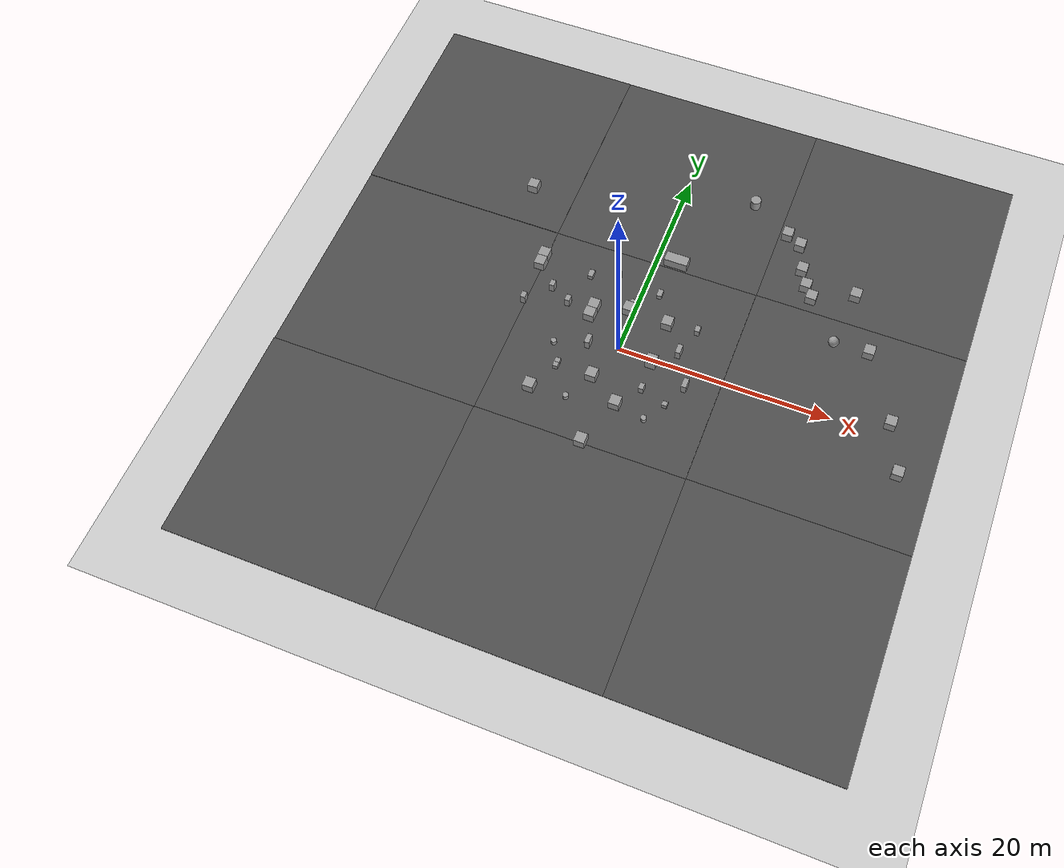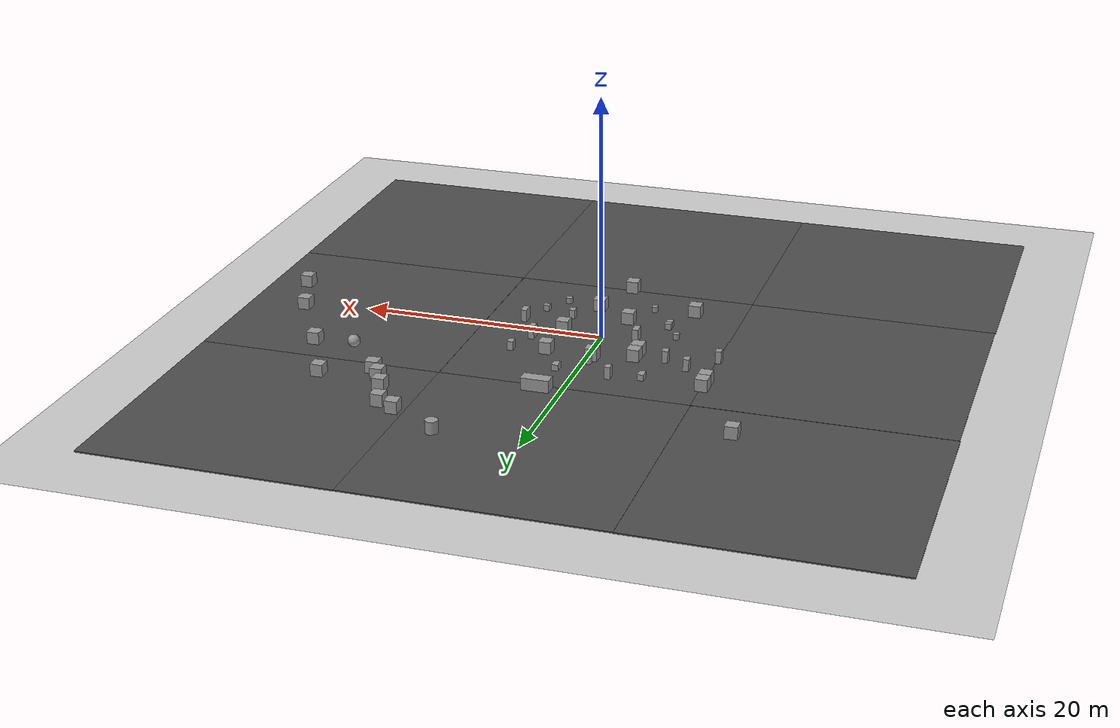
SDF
<sdf version="1.7">
 <world name="default">
  <scene><ambient>0.4 0.4 0.4 1</ambient><background>0.7 0.7 0.7 1</background><shadows>1</shadows></scene>
  <light name="sun" type="directional">
   <pose>0 0 10 0 -0 0</pose>
   <diffuse>0.8 0.8 0.8 1</diffuse>
   <specular>0.2 0.2 0.2 1</specular>
   <attenuation>
    <range>1000</range>
    <constant>0.9</constant>
    <linear>0.01</linear>
    <quadratic>0.001</quadratic>
   </attenuation>
   <direction>-0.5 0.1 -0.9</direction>
   <spot><inner_angle>0</inner_angle><outer_angle>0</outer_angle><falloff>0</falloff></spot>
  </light>
  <model name="ground_plane">
   <static>1</static>
   <link name="link">
    <collision name="collision">
     <geometry><plane><normal>0 0 1</normal><size>100 100</size></plane></geometry>
     <surface>
      <contact><collide_bitmask>65535</collide_bitmask></contact>
      <friction><ode><mu>100</mu><mu2>50</mu2></ode></friction>
     </surface>
    </collision>
    <visual name="visual">
     <cast_shadows>0</cast_shadows>
     <geometry><plane><normal>0 0 1</normal><size>100 100</size></plane></geometry>
     <material>
      <script><uri>file://media/materials/scripts/gazebo.material</uri><name>Gazebo/Grey</name></script>
     </material>
    </visual>
   </link>
  </model>
  <physics type="ode">
   <real_time_update_rate>3000</real_time_update_rate>
   <max_step_size>0.001</max_step_size>
   <real_time_factor>10</real_time_factor>
   <ode>
    <solver>
     <type>quick</type>
     <iters>100</iters>
     <precon_iters>0</precon_iters>
     <sor>1.4</sor>
     <use_dynamic_moi_rescaling>1</use_dynamic_moi_rescaling>
    </solver>
    <constraints>
     <cfm>1e-05</cfm>
     <erp>0.2</erp>
     <contact_max_correcting_vel>2000</contact_max_correcting_vel>
     <contact_surface_layer>0.01</contact_surface_layer>
    </constraints>
   </ode>
  </physics>
  <gravity>0 0 -9.8</gravity>
  <magnetic_field>6e-06 2.3e-05 -4.2e-05</magnetic_field>
  <atmosphere type="adiabatic"/>
  <spherical_coordinates>
   <surface_model>EARTH_WGS84</surface_model>
   <latitude_deg>0</latitude_deg>
   <longitude_deg>0</longitude_deg>
   <elevation>0</elevation>
   <heading_deg>0</heading_deg>
  </spherical_coordinates>
  <model name="asphalt_plane">
   <static>1</static>
   <link name="link">
    <collision name="collision"><geometry><box><size>20 20 0.1</size></box></geometry></collision>
    <visual name="visual">
     <cast_shadows>0</cast_shadows>
     <geometry><box><size>20 20 0.1</size></box></geometry>
     <material>
      <script>
       <uri>model://asphalt_plane/materials/scripts</uri>
       <uri>model://asphalt_plane/materials/textures</uri>
       <name>vrc/asphalt</name>
      </script>
     </material>
    </visual>
   </link>
   <pose>-0.014859 -0.026662 0 0 -0 0</pose>
  </model>
  <model name="asphalt_plane_clone">
   <static>1</static>
   <link name="link">
    <collision name="collision"><geometry><box><size>20 20 0.1</size></box></geometry></collision>
    <visual name="visual">
     <cast_shadows>0</cast_shadows>
     <geometry><box><size>20 20 0.1</size></box></geometry>
     <material>
      <script>
       <uri>model://asphalt_plane/materials/scripts</uri>
       <uri>model://asphalt_plane/materials/textures</uri>
       <name>vrc/asphalt</name>
      </script>
     </material>
    </visual>
   </link>
   <pose>20 0 0 0 -0 0</pose>
  </model>
  <model name="asphalt_plane_clone_0">
   <static>1</static>
   <link name="link">
    <collision name="collision"><geometry><box><size>20 20 0.1</size></box></geometry></collision>
    <visual name="visual">
     <cast_shadows>0</cast_shadows>
     <geometry><box><size>20 20 0.1</size></box></geometry>
     <material>
      <script>
       <uri>model://asphalt_plane/materials/scripts</uri>
       <uri>model://asphalt_plane/materials/textures</uri>
       <name>vrc/asphalt</name>
      </script>
     </material>
    </visual>
   </link>
   <pose>20 -20 0 0 -0 0</pose>
  </model>
  <model name="asphalt_plane_clone_1">
   <static>1</static>
   <link name="link">
    <collision name="collision"><geometry><box><size>20 20 0.1</size></box></geometry></collision>
    <visual name="visual">
     <cast_shadows>0</cast_shadows>
     <geometry><box><size>20 20 0.1</size></box></geometry>
     <material>
      <script>
       <uri>model://asphalt_plane/materials/scripts</uri>
       <uri>model://asphalt_plane/materials/textures</uri>
       <name>vrc/asphalt</name>
      </script>
     </material>
    </visual>
   </link>
   <pose>0 -20 0 0 -0 0</pose>
  </model>
  <model name="asphalt_plane_clone_2">
   <static>1</static>
   <link name="link">
    <collision name="collision"><geometry><box><size>20 20 0.1</size></box></geometry></collision>
    <visual name="visual">
     <cast_shadows>0</cast_shadows>
     <geometry><box><size>20 20 0.1</size></box></geometry>
     <material>
      <script>
       <uri>model://asphalt_plane/materials/scripts</uri>
       <uri>model://asphalt_plane/materials/textures</uri>
       <name>vrc/asphalt</name>
      </script>
     </material>
    </visual>
   </link>
   <pose>-20 -20 0 0 -0 0</pose>
  </model>
  <model name="asphalt_plane_clone_3">
   <static>1</static>
   <link name="link">
    <collision name="collision"><geometry><box><size>20 20 0.1</size></box></geometry></collision>
    <visual name="visual">
     <cast_shadows>0</cast_shadows>
     <geometry><box><size>20 20 0.1</size></box></geometry>
     <material>
      <script>
       <uri>model://asphalt_plane/materials/scripts</uri>
       <uri>model://asphalt_plane/materials/textures</uri>
       <name>vrc/asphalt</name>
      </script>
     </material>
    </visual>
   </link>
   <pose>-19.9436 -0.028987 0 0 -0 0</pose>
  </model>
  <model name="asphalt_plane_clone_4">
   <static>1</static>
   <link name="link">
    <collision name="collision"><geometry><box><size>20 20 0.1</size></box></geometry></collision>
    <visual name="visual">
     <cast_shadows>0</cast_shadows>
     <geometry><box><size>20 20 0.1</size></box></geometry>
     <material>
      <script>
       <uri>model://asphalt_plane/materials/scripts</uri>
       <uri>model://asphalt_plane/materials/textures</uri>
       <name>vrc/asphalt</name>
      </script>
     </material>
    </visual>
   </link>
   <pose>-20 20 0 0 -0 0</pose>
  </model>
  <model name="asphalt_plane_clone_5">
   <static>1</static>
   <link name="link">
    <collision name="collision"><geometry><box><size>20 20 0.1</size></box></geometry></collision>
    <visual name="visual">
     <cast_shadows>0</cast_shadows>
     <geometry><box><size>20 20 0.1</size></box></geometry>
     <material>
      <script>
       <uri>model://asphalt_plane/materials/scripts</uri>
       <uri>model://asphalt_plane/materials/textures</uri>
       <name>vrc/asphalt</name>
      </script>
     </material>
    </visual>
   </link>
   <pose>0.007354 19.9731 0 0 -0 0</pose>
  </model>
  <model name="asphalt_plane_clone_6">
   <static>1</static>
   <link name="link">
    <collision name="collision"><geometry><box><size>20 20 0.1</size></box></geometry></collision>
    <visual name="visual">
     <cast_shadows>0</cast_shadows>
     <geometry><box><size>20 20 0.1</size></box></geometry>
     <material>
      <script>
       <uri>model://asphalt_plane/materials/scripts</uri>
       <uri>model://asphalt_plane/materials/textures</uri>
       <name>vrc/asphalt</name>
      </script>
     </material>
    </visual>
   </link>
   <pose>20 20 0 0 -0 0</pose>
  </model>
  <light name="user_directional_light_0" type="directional">
   <pose>0 0 1 0 -0 0</pose>
   <diffuse>0.5 0.5 0.5 1</diffuse>
   <specular>0.1 0.1 0.1 1</specular>
   <direction>0.1 0.1 -0.9</direction>
   <attenuation>
    <range>20</range>
    <constant>0.5</constant>
    <linear>0.01</linear>
    <quadratic>0.001</quadratic>
   </attenuation>
   <spot><inner_angle>0</inner_angle><outer_angle>0</outer_angle><falloff>0</falloff></spot>
  </light>
  <model name="unit_box">
   <pose>3.3249 3.92526 0.55 0 -0 -1e-06</pose>
   <link name="link">
    <inertial>
     <mass>1</mass>
     <inertia>
      <ixx>0.166667</ixx>
      <ixy>0</ixy>
      <ixz>0</ixz>
      <iyy>0.166667</iyy>
      <iyz>0</iyz>
      <izz>0.166667</izz>
     </inertia>
    </inertial>
    <collision name="collision"><geometry><box><size>1 1 1</size></box></geometry></collision>
    <visual name="visual">
     <geometry><box><size>1 1 1</size></box></geometry>
     <material>
      <script><name>Gazebo/Grey</name><uri>file://media/materials/scripts/gazebo.material</uri></script>
     </material>
    </visual>
   </link>
  </model>
  <model name="unit_cylinder_clone_3">
   <pose>-0.494177 5.00003 0.294835 0 -0 0.002481</pose>
   <link name="link">
    <inertial>
     <mass>1</mass>
     <inertia><ixx>0.145833</ixx><ixy>0</ixy><ixz>0</ixz><iyy>0.145833</iyy><iyz>0</iyz><izz>0.125</izz></inertia>
    </inertial>
    <collision name="collision">
     <geometry><cylinder><radius>0.264047</radius><length>0.48967</length></cylinder></geometry>
    </collision>
    <visual name="visual">
     <geometry><cylinder><radius>0.264047</radius><length>0.48967</length></cylinder></geometry>
     <material>
      <script><name>Gazebo/Grey</name><uri>file://media/materials/scripts/gazebo.material</uri></script>
     </material>
    </visual>
   </link>
  </model>
  <model name="unit_box_0_clone_1_clone_2">
   <pose>5.89538 -3.99875 0.301356 0 -0 1e-06</pose>
   <link name="link">
    <inertial>
     <mass>1</mass>
     <inertia>
      <ixx>0.166667</ixx>
      <ixy>0</ixy>
      <ixz>0</ixz>
      <iyy>0.166667</iyy>
      <iyz>0</iyz>
      <izz>0.166667</izz>
     </inertia>
    </inertial>
    <collision name="collision">
     <geometry><box><size>0.495294 0.467832 0.502712</size></box></geometry>
    </collision>
    <visual name="visual">
     <geometry><box><size>0.495294 0.467832 0.502712</size></box></geometry>
     <material>
      <script><name>Gazebo/Grey</name><uri>file://media/materials/scripts/gazebo.material</uri></script>
     </material>
    </visual>
   </link>
  </model>
  <model name="unit_box_1">
   <pose>1.73473 -5.44844 0.55 0 -0 -1e-06</pose>
   <link name="link">
    <inertial>
     <mass>1</mass>
     <inertia>
      <ixx>0.166667</ixx>
      <ixy>0</ixy>
      <ixz>0</ixz>
      <iyy>0.166667</iyy>
      <iyz>0</iyz>
      <izz>0.166667</izz>
     </inertia>
    </inertial>
    <collision name="collision"><geometry><box><size>1 1 1</size></box></geometry></collision>
    <visual name="visual">
     <geometry><box><size>1 1 1</size></box></geometry>
     <material>
      <script><name>Gazebo/Grey</name><uri>file://media/materials/scripts/gazebo.material</uri></script>
     </material>
    </visual>
   </link>
  </model>
  <model name="unit_box_2">
   <pose>-1.24056 -3.52811 0.55 0 -0 -1e-06</pose>
   <link name="link">
    <inertial>
     <mass>1</mass>
     <inertia>
      <ixx>0.166667</ixx>
      <ixy>0</ixy>
      <ixz>0</ixz>
      <iyy>0.166667</iyy>
      <iyz>0</iyz>
      <izz>0.166667</izz>
     </inertia>
    </inertial>
    <collision name="collision"><geometry><box><size>1 1 1</size></box></geometry></collision>
    <visual name="visual">
     <geometry><box><size>1 1 1</size></box></geometry>
     <material>
      <script><name>Gazebo/Grey</name><uri>file://media/materials/scripts/gazebo.material</uri></script>
     </material>
    </visual>
   </link>
  </model>
  <model name="unit_box_3_clone_1">
   <pose>6.15547 4.18849 0.422713 0 -0 0</pose>
   <link name="link">
    <inertial>
     <mass>1</mass>
     <inertia>
      <ixx>0.166667</ixx>
      <ixy>0</ixy>
      <ixz>0</ixz>
      <iyy>0.166667</iyy>
      <iyz>0</iyz>
      <izz>0.166667</izz>
     </inertia>
    </inertial>
    <collision name="collision">
     <geometry><box><size>0.473217 0.637104 0.745427</size></box></geometry>
    </collision>
    <visual name="visual">
     <geometry><box><size>0.473217 0.637104 0.745427</size></box></geometry>
     <material>
      <script><name>Gazebo/Grey</name><uri>file://media/materials/scripts/gazebo.material</uri></script>
     </material>
    </visual>
   </link>
  </model>
  <model name="unit_box_3_clone_2">
   <pose>-6.12917 2.98269 0.55 0 -0 0</pose>
   <link name="link">
    <inertial>
     <mass>1</mass>
     <inertia>
      <ixx>0.166667</ixx>
      <ixy>0</ixy>
      <ixz>0</ixz>
      <iyy>0.166667</iyy>
      <iyz>0</iyz>
      <izz>0.166667</izz>
     </inertia>
    </inertial>
    <collision name="collision"><geometry><box><size>0.473217 0.637104 1</size></box></geometry></collision>
    <visual name="visual">
     <geometry><box><size>0.473217 0.637104 1</size></box></geometry>
     <material>
      <script><name>Gazebo/Grey</name><uri>file://media/materials/scripts/gazebo.material</uri></script>
     </material>
    </visual>
   </link>
  </model>
  <model name="unit_box_5">
   <pose>1.87337 10.6312 0.549967 0 -2.9e-05 0</pose>
   <link name="link">
    <inertial>
     <mass>1</mass>
     <inertia>
      <ixx>0.166667</ixx>
      <ixy>0</ixy>
      <ixz>0</ixz>
      <iyy>0.166667</iyy>
      <iyz>0</iyz>
      <izz>0.166667</izz>
     </inertia>
    </inertial>
    <collision name="collision"><geometry><box><size>2.25366 1 1</size></box></geometry></collision>
    <visual name="visual">
     <geometry><box><size>2.25366 1 1</size></box></geometry>
     <material>
      <script><name>Gazebo/Grey</name><uri>file://media/materials/scripts/gazebo.material</uri></script>
     </material>
    </visual>
   </link>
  </model>
  <model name="unit_cylinder_1">
   <pose>6.78695 19.7557 0.550006 -1.1e-05 -4e-06 -0.001505</pose>
   <link name="link">
    <inertial>
     <mass>1</mass>
     <inertia><ixx>0.145833</ixx><ixy>0</ixy><ixz>0</ixz><iyy>0.145833</iyy><iyz>0</iyz><izz>0.125</izz></inertia>
    </inertial>
    <collision name="collision">
     <geometry><cylinder><radius>0.5</radius><length>1</length></cylinder></geometry>
    </collision>
    <visual name="visual">
     <geometry><cylinder><radius>0.5</radius><length>1</length></cylinder></geometry>
     <material>
      <script><name>Gazebo/Grey</name><uri>file://media/materials/scripts/gazebo.material</uri></script>
     </material>
    </visual>
   </link>
  </model>
  <model name="unit_sphere_0">
   <pose>18.1703 7.41217 0.55 0 -0 0</pose>
   <link name="link">
    <inertial>
     <mass>1</mass>
     <inertia><ixx>0.1</ixx><ixy>0</ixy><ixz>0</ixz><iyy>0.1</iyy><iyz>0</iyz><izz>0.1</izz></inertia>
    </inertial>
    <collision name="collision"><geometry><sphere><radius>0.5</radius></sphere></geometry></collision>
    <visual name="visual">
     <geometry><sphere><radius>0.5</radius></sphere></geometry>
     <material>
      <script><name>Gazebo/Grey</name><uri>file://media/materials/scripts/gazebo.material</uri></script>
     </material>
    </visual>
   </link>
  </model>
  <model name="unit_box_6">
   <pose>25.1293 1.2362 0.55 0 -0 -3e-06</pose>
   <link name="link">
    <inertial>
     <mass>1</mass>
     <inertia>
      <ixx>0.166667</ixx>
      <ixy>0</ixy>
      <ixz>0</ixz>
      <iyy>0.166667</iyy>
      <iyz>0</iyz>
      <izz>0.166667</izz>
     </inertia>
    </inertial>
    <collision name="collision"><geometry><box><size>1 1 1</size></box></geometry></collision>
    <visual name="visual">
     <geometry><box><size>1 1 1</size></box></geometry>
     <material>
      <script><name>Gazebo/Grey</name><uri>file://media/materials/scripts/gazebo.material</uri></script>
     </material>
    </visual>
   </link>
  </model>
  <model name="unit_box_4_clone_clone">
   <pose>13.2189 13.9745 0.55 0 -0 -3e-06</pose>
   <link name="link">
    <inertial>
     <mass>1</mass>
     <inertia>
      <ixx>0.166667</ixx>
      <ixy>0</ixy>
      <ixz>0</ixz>
      <iyy>0.166667</iyy>
      <iyz>0</iyz>
      <izz>0.166667</izz>
     </inertia>
    </inertial>
    <collision name="collision"><geometry><box><size>1 1 1</size></box></geometry></collision>
    <visual name="visual">
     <geometry><box><size>1 1 1</size></box></geometry>
     <material>
      <script><name>Gazebo/Grey</name><uri>file://media/materials/scripts/gazebo.material</uri></script>
     </material>
    </visual>
   </link>
  </model>
  <model name="unit_box_4_clone_clone_0">
   <pose>10.7891 17.3515 0.55 0 -0 -3e-06</pose>
   <link name="link">
    <inertial>
     <mass>1</mass>
     <inertia>
      <ixx>0.166667</ixx>
      <ixy>0</ixy>
      <ixz>0</ixz>
      <iyy>0.166667</iyy>
      <iyz>0</iyz>
      <izz>0.166667</izz>
     </inertia>
    </inertial>
    <collision name="collision"><geometry><box><size>1 1 1</size></box></geometry></collision>
    <visual name="visual">
     <geometry><box><size>1 1 1</size></box></geometry>
     <material>
      <script><name>Gazebo/Grey</name><uri>file://media/materials/scripts/gazebo.material</uri></script>
     </material>
    </visual>
   </link>
  </model>
  <model name="unit_box_4_clone_clone_1">
   <pose>21.4596 7.50862 0.55 0 -0 -3e-06</pose>
   <link name="link">
    <inertial>
     <mass>1</mass>
     <inertia>
      <ixx>0.166667</ixx>
      <ixy>0</ixy>
      <ixz>0</ixz>
      <iyy>0.166667</iyy>
      <iyz>0</iyz>
      <izz>0.166667</izz>
     </inertia>
    </inertial>
    <collision name="collision"><geometry><box><size>1 1 1</size></box></geometry></collision>
    <visual name="visual">
     <geometry><box><size>1 1 1</size></box></geometry>
     <material>
      <script><name>Gazebo/Grey</name><uri>file://media/materials/scripts/gazebo.material</uri></script>
     </material>
    </visual>
   </link>
  </model>
  <model name="unit_box_4_clone_clone_2">
   <pose>18.6991 12.9908 0.55 0 -0 -3e-06</pose>
   <link name="link">
    <inertial>
     <mass>1</mass>
     <inertia>
      <ixx>0.166667</ixx>
      <ixy>0</ixy>
      <ixz>0</ixz>
      <iyy>0.166667</iyy>
      <iyz>0</iyz>
      <izz>0.166667</izz>
     </inertia>
    </inertial>
    <collision name="collision"><geometry><box><size>1 1 1</size></box></geometry></collision>
    <visual name="visual">
     <geometry><box><size>1 1 1</size></box></geometry>
     <material>
      <script><name>Gazebo/Grey</name><uri>file://media/materials/scripts/gazebo.material</uri></script>
     </material>
    </visual>
   </link>
  </model>
  <model name="unit_box_4_clone_clone_3">
   <pose>26.913 -3.2566 0.55 0 -0 -3e-06</pose>
   <link name="link">
    <inertial>
     <mass>1</mass>
     <inertia>
      <ixx>0.166667</ixx>
      <ixy>0</ixy>
      <ixz>0</ixz>
      <iyy>0.166667</iyy>
      <iyz>0</iyz>
      <izz>0.166667</izz>
     </inertia>
    </inertial>
    <collision name="collision"><geometry><box><size>1 1 1</size></box></geometry></collision>
    <visual name="visual">
     <geometry><box><size>1 1 1</size></box></geometry>
     <material>
      <script><name>Gazebo/Grey</name><uri>file://media/materials/scripts/gazebo.material</uri></script>
     </material>
    </visual>
   </link>
  </model>
  <model name="unit_box_2_clone">
   <pose>-3.70898 2.31699 0.549998 1e-06 4e-06 -0.007242</pose>
   <link name="link">
    <inertial>
     <mass>1</mass>
     <inertia>
      <ixx>0.166667</ixx>
      <ixy>0</ixy>
      <ixz>0</ixz>
      <iyy>0.166667</iyy>
      <iyz>0</iyz>
      <izz>0.166667</izz>
     </inertia>
    </inertial>
    <collision name="collision"><geometry><box><size>1 1 1</size></box></geometry></collision>
    <visual name="visual">
     <geometry><box><size>1 1 1</size></box></geometry>
     <material>
      <script><name>Gazebo/Grey</name><uri>file://media/materials/scripts/gazebo.material</uri></script>
     </material>
    </visual>
   </link>
  </model>
  <model name="unit_box_0_clone_clone">
   <pose>-5.21709 6.55826 0.301351 -1.2e-05 1e-06 7e-06</pose>
   <link name="link">
    <inertial>
     <mass>1</mass>
     <inertia>
      <ixx>0.166667</ixx>
      <ixy>0</ixy>
      <ixz>0</ixz>
      <iyy>0.166667</iyy>
      <iyz>0</iyz>
      <izz>0.166667</izz>
     </inertia>
    </inertial>
    <collision name="collision">
     <geometry><box><size>0.495294 0.766084 0.502712</size></box></geometry>
    </collision>
    <visual name="visual">
     <geometry><box><size>0.495294 0.766084 0.502712</size></box></geometry>
     <material>
      <script><name>Gazebo/Grey</name><uri>file://media/materials/scripts/gazebo.material</uri></script>
     </material>
    </visual>
   </link>
  </model>
  <model name="unit_box_3_clone_0_clone">
   <pose>5.30107 1.46676 0.55 0 -0 0</pose>
   <link name="link">
    <inertial>
     <mass>1</mass>
     <inertia>
      <ixx>0.166667</ixx>
      <ixy>0</ixy>
      <ixz>0</ixz>
      <iyy>0.166667</iyy>
      <iyz>0</iyz>
      <izz>0.166667</izz>
     </inertia>
    </inertial>
    <collision name="collision"><geometry><box><size>0.473217 0.950732 1</size></box></geometry></collision>
    <visual name="visual">
     <geometry><box><size>0.473217 0.950732 1</size></box></geometry>
     <material>
      <script><name>Gazebo/Grey</name><uri>file://media/materials/scripts/gazebo.material</uri></script>
     </material>
    </visual>
   </link>
  </model>
  <model name="unit_box_2_clone_0">
   <pose>-0.521105 4.14236 0.55 0 -0 -1e-06</pose>
   <link name="link">
    <inertial>
     <mass>1</mass>
     <inertia>
      <ixx>0.166667</ixx>
      <ixy>0</ixy>
      <ixz>0</ixz>
      <iyy>0.166667</iyy>
      <iyz>0</iyz>
      <izz>0.166667</izz>
     </inertia>
    </inertial>
    <collision name="collision"><geometry><box><size>1 1 1</size></box></geometry></collision>
    <visual name="visual">
     <geometry><box><size>1 1 1</size></box></geometry>
     <material>
      <script><name>Gazebo/Grey</name><uri>file://media/materials/scripts/gazebo.material</uri></script>
     </material>
    </visual>
   </link>
  </model>
  <model name="unit_box_3_clone_0_clone_0">
   <pose>-2.77968 -0.427653 0.55 0 -0 0</pose>
   <link name="link">
    <inertial>
     <mass>1</mass>
     <inertia>
      <ixx>0.166667</ixx>
      <ixy>0</ixy>
      <ixz>0</ixz>
      <iyy>0.166667</iyy>
      <iyz>0</iyz>
      <izz>0.166667</izz>
     </inertia>
    </inertial>
    <collision name="collision"><geometry><box><size>0.473217 0.950731 1</size></box></geometry></collision>
    <visual name="visual">
     <geometry><box><size>0.473217 0.950731 1</size></box></geometry>
     <material>
      <script><name>Gazebo/Grey</name><uri>file://media/materials/scripts/gazebo.material</uri></script>
     </material>
    </visual>
   </link>
  </model>
  <model name="unit_box_1_clone_clone">
   <pose>3.30807 -0.378951 0.55 0 -0 -3e-06</pose>
   <link name="link">
    <inertial>
     <mass>1</mass>
     <inertia>
      <ixx>0.166667</ixx>
      <ixy>0</ixy>
      <ixz>0</ixz>
      <iyy>0.166667</iyy>
      <iyz>0</iyz>
      <izz>0.166667</izz>
     </inertia>
    </inertial>
    <collision name="collision"><geometry><box><size>1 1 1</size></box></geometry></collision>
    <visual name="visual">
     <geometry><box><size>1 1 1</size></box></geometry>
     <material>
      <script><name>Gazebo/Grey</name><uri>file://media/materials/scripts/gazebo.material</uri></script>
     </material>
    </visual>
   </link>
  </model>
  <model name="unit_box_3_clone_clone">
   <pose>-2.69557 7.10878 0.55 -0 -0 -0</pose>
   <link name="link">
    <inertial>
     <mass>1</mass>
     <inertia>
      <ixx>0.166667</ixx>
      <ixy>0</ixy>
      <ixz>0</ixz>
      <iyy>0.166667</iyy>
      <iyz>0</iyz>
      <izz>0.166667</izz>
     </inertia>
    </inertial>
    <collision name="collision"><geometry><box><size>0.473217 0.637104 1</size></box></geometry></collision>
    <visual name="visual">
     <geometry><box><size>0.473217 0.637104 1</size></box></geometry>
     <material>
      <script><name>Gazebo/Grey</name><uri>file://media/materials/scripts/gazebo.material</uri></script>
     </material>
    </visual>
   </link>
  </model>
  <model name="unit_box_3_clone_0_clone_clone">
   <pose>6.96449 -1.65259 0.55 0 -0 0</pose>
   <link name="link">
    <inertial>
     <mass>1</mass>
     <inertia>
      <ixx>0.166667</ixx>
      <ixy>0</ixy>
      <ixz>0</ixz>
      <iyy>0.166667</iyy>
      <iyz>0</iyz>
      <izz>0.166667</izz>
     </inertia>
    </inertial>
    <collision name="collision"><geometry><box><size>0.473217 0.950732 1</size></box></geometry></collision>
    <visual name="visual">
     <geometry><box><size>0.473217 0.950732 1</size></box></geometry>
     <material>
      <script><name>Gazebo/Grey</name><uri>file://media/materials/scripts/gazebo.material</uri></script>
     </material>
    </visual>
   </link>
  </model>
  <model name="unit_cylinder_clone_12_clone">
   <pose>-5.78275 -1.44373 0.294836 -4e-06 -3e-06 0.000928</pose>
   <link name="link">
    <inertial>
     <mass>1</mass>
     <inertia><ixx>0.145833</ixx><ixy>0</ixy><ixz>0</ixz><iyy>0.145833</iyy><iyz>0</iyz><izz>0.125</izz></inertia>
    </inertial>
    <collision name="collision">
     <geometry><cylinder><radius>0.264047</radius><length>0.48967</length></cylinder></geometry>
    </collision>
    <visual name="visual">
     <geometry><cylinder><radius>0.264047</radius><length>0.48967</length></cylinder></geometry>
     <material>
      <script><name>Gazebo/Grey</name><uri>file://media/materials/scripts/gazebo.material</uri></script>
     </material>
    </visual>
   </link>
  </model>
  <model name="unit_box_0_clone_1_clone_4_clone">
   <pose>-4.67957 -3.23498 0.301356 0 -0 0.000778</pose>
   <link name="link">
    <inertial>
     <mass>1</mass>
     <inertia>
      <ixx>0.166667</ixx>
      <ixy>0</ixy>
      <ixz>0</ixz>
      <iyy>0.166667</iyy>
      <iyz>0</iyz>
      <izz>0.166667</izz>
     </inertia>
    </inertial>
    <collision name="collision">
     <geometry><box><size>0.495294 0.467832 0.502712</size></box></geometry>
    </collision>
    <visual name="visual">
     <geometry><box><size>0.495294 0.467832 0.502712</size></box></geometry>
     <material>
      <script><name>Gazebo/Grey</name><uri>file://media/materials/scripts/gazebo.material</uri></script>
     </material>
    </visual>
   </link>
  </model>
  <model name="unit_box_0_clone_1_clone_4_clone_0">
   <pose>-4.66868 -3.7028 0.301356 0 -0 0.000778</pose>
   <link name="link">
    <inertial>
     <mass>1</mass>
     <inertia>
      <ixx>0.166667</ixx>
      <ixy>0</ixy>
      <ixz>0</ixz>
      <iyy>0.166667</iyy>
      <iyz>0</iyz>
      <izz>0.166667</izz>
     </inertia>
    </inertial>
    <collision name="collision">
     <geometry><box><size>0.495294 0.467832 0.502712</size></box></geometry>
    </collision>
    <visual name="visual">
     <geometry><box><size>0.495294 0.467832 0.502712</size></box></geometry>
     <material>
      <script><name>Gazebo/Grey</name><uri>file://media/materials/scripts/gazebo.material</uri></script>
     </material>
    </visual>
   </link>
  </model>
  <model name="unit_cylinder_clone_17_clone">
   <pose>-2.67448 -6.27152 0.294825 0 -0 0.000211</pose>
   <link name="link">
    <inertial>
     <mass>1</mass>
     <inertia><ixx>0.145833</ixx><ixy>0</ixy><ixz>0</ixz><iyy>0.145833</iyy><iyz>0</iyz><izz>0.125</izz></inertia>
    </inertial>
    <collision name="collision">
     <geometry><cylinder><radius>0.264047</radius><length>0.48967</length></cylinder></geometry>
    </collision>
    <visual name="visual">
     <geometry><cylinder><radius>0.264047</radius><length>0.48967</length></cylinder></geometry>
     <material>
      <script><name>Gazebo/Grey</name><uri>file://media/materials/scripts/gazebo.material</uri></script>
     </material>
    </visual>
   </link>
  </model>
  <model name="unit_box_3_clone_1_clone">
   <pose>3.41372 -3.20085 0.422713 0 -0 0</pose>
   <link name="link">
    <inertial>
     <mass>1</mass>
     <inertia>
      <ixx>0.166667</ixx>
      <ixy>0</ixy>
      <ixz>0</ixz>
      <iyy>0.166667</iyy>
      <iyz>0</iyz>
      <izz>0.166667</izz>
     </inertia>
    </inertial>
    <collision name="collision">
     <geometry><box><size>0.473217 0.637104 0.745427</size></box></geometry>
    </collision>
    <visual name="visual">
     <geometry><box><size>0.473217 0.637104 0.745427</size></box></geometry>
     <material>
      <script><name>Gazebo/Grey</name><uri>file://media/materials/scripts/gazebo.material</uri></script>
     </material>
    </visual>
   </link>
  </model>
  <model name="unit_cylinder_clone_15_clone">
   <pose>4.61061 -5.98036 0.294834 2e-06 -3e-06 0.002</pose>
   <link name="link">
    <inertial>
     <mass>1</mass>
     <inertia><ixx>0.145833</ixx><ixy>0</ixy><ixz>0</ixz><iyy>0.145833</iyy><iyz>0</iyz><izz>0.125</izz></inertia>
    </inertial>
    <collision name="collision">
     <geometry><cylinder><radius>0.264047</radius><length>0.48967</length></cylinder></geometry>
    </collision>
    <visual name="visual">
     <geometry><cylinder><radius>0.264047</radius><length>0.48967</length></cylinder></geometry>
     <material>
      <script><name>Gazebo/Grey</name><uri>file://media/materials/scripts/gazebo.material</uri></script>
     </material>
    </visual>
   </link>
  </model>
  <model name="unit_box_2_clone_clone">
   <pose>-3.6781 3.3168 0.549998 1e-06 4e-06 -0.007243</pose>
   <link name="link">
    <inertial>
     <mass>1</mass>
     <inertia>
      <ixx>0.166667</ixx>
      <ixy>0</ixy>
      <ixz>0</ixz>
      <iyy>0.166667</iyy>
      <iyz>0</iyz>
      <izz>0.166667</izz>
     </inertia>
    </inertial>
    <collision name="collision"><geometry><box><size>1 1 1</size></box></geometry></collision>
    <visual name="visual">
     <geometry><box><size>1 1 1</size></box></geometry>
     <material>
      <script><name>Gazebo/Grey</name><uri>file://media/materials/scripts/gazebo.material</uri></script>
     </material>
    </visual>
   </link>
  </model>
  <model name="unit_box_3_clone_clone_clone">
   <pose>-8.08164 3.98378 0.55 0 -0 0</pose>
   <link name="link">
    <inertial>
     <mass>1</mass>
     <inertia>
      <ixx>0.166667</ixx>
      <ixy>0</ixy>
      <ixz>0</ixz>
      <iyy>0.166667</iyy>
      <iyz>0</iyz>
      <izz>0.166667</izz>
     </inertia>
    </inertial>
    <collision name="collision"><geometry><box><size>0.473217 0.637104 1</size></box></geometry></collision>
    <visual name="visual">
     <geometry><box><size>0.473217 0.637104 1</size></box></geometry>
     <material>
      <script><name>Gazebo/Grey</name><uri>file://media/materials/scripts/gazebo.material</uri></script>
     </material>
    </visual>
   </link>
  </model>
  <model name="unit_box_0_clone_clone_0">
   <pose>1.58019 6.77243 0.301351 -1.2e-05 1e-06 7e-06</pose>
   <link name="link">
    <inertial>
     <mass>1</mass>
     <inertia>
      <ixx>0.166667</ixx>
      <ixy>0</ixy>
      <ixz>0</ixz>
      <iyy>0.166667</iyy>
      <iyz>0</iyz>
      <izz>0.166667</izz>
     </inertia>
    </inertial>
    <collision name="collision">
     <geometry><box><size>0.495294 0.766084 0.502712</size></box></geometry>
    </collision>
    <visual name="visual">
     <geometry><box><size>0.495294 0.766084 0.502712</size></box></geometry>
     <material>
      <script><name>Gazebo/Grey</name><uri>file://media/materials/scripts/gazebo.material</uri></script>
     </material>
    </visual>
   </link>
  </model>
  <model name="unit_box_2_clone_0_clone_0_clone_clone">
   <pose>-14.1664 14.0915 0.55 0 -0 0.013832</pose>
   <link name="link">
    <inertial>
     <mass>1</mass>
     <inertia>
      <ixx>0.166667</ixx>
      <ixy>0</ixy>
      <ixz>0</ixz>
      <iyy>0.166667</iyy>
      <iyz>0</iyz>
      <izz>0.166667</izz>
     </inertia>
    </inertial>
    <collision name="collision"><geometry><box><size>1 1 1</size></box></geometry></collision>
    <visual name="visual">
     <geometry><box><size>1 1 1</size></box></geometry>
     <material>
      <script><name>Gazebo/Grey</name><uri>file://media/materials/scripts/gazebo.material</uri></script>
     </material>
    </visual>
   </link>
  </model>
  <model name="unit_box_4_clone_clone_2_clone">
   <pose>12.2506 16.5635 0.55 0 0 -3e-06</pose>
   <link name="link">
    <inertial>
     <mass>1</mass>
     <inertia>
      <ixx>0.166667</ixx>
      <ixy>0</ixy>
      <ixz>0</ixz>
      <iyy>0.166667</iyy>
      <iyz>0</iyz>
      <izz>0.166667</izz>
     </inertia>
    </inertial>
    <collision name="collision"><geometry><box><size>1 1 1</size></box></geometry></collision>
    <visual name="visual">
     <geometry><box><size>1 1 1</size></box></geometry>
     <material>
      <script><name>Gazebo/Grey</name><uri>file://media/materials/scripts/gazebo.material</uri></script>
     </material>
    </visual>
   </link>
  </model>
  <model name="unit_box_4_clone_clone_2_clone_0">
   <pose>14.0489 12.3678 0.55 0 0 -3e-06</pose>
   <link name="link">
    <inertial>
     <mass>1</mass>
     <inertia>
      <ixx>0.166667</ixx>
      <ixy>0</ixy>
      <ixz>0</ixz>
      <iyy>0.166667</iyy>
      <iyz>0</iyz>
      <izz>0.166667</izz>
     </inertia>
    </inertial>
    <collision name="collision"><geometry><box><size>1 1 1</size></box></geometry></collision>
    <visual name="visual">
     <geometry><box><size>1 1 1</size></box></geometry>
     <material>
      <script><name>Gazebo/Grey</name><uri>file://media/materials/scripts/gazebo.material</uri></script>
     </material>
    </visual>
   </link>
  </model>
  <model name="unit_box_4_clone_clone_2_clone_1">
   <pose>14.8996 11.288 0.55 0 -0 -3e-06</pose>
   <link name="link">
    <inertial>
     <mass>1</mass>
     <inertia>
      <ixx>0.166667</ixx>
      <ixy>0</ixy>
      <ixz>0</ixz>
      <iyy>0.166667</iyy>
      <iyz>0</iyz>
      <izz>0.166667</izz>
     </inertia>
    </inertial>
    <collision name="collision"><geometry><box><size>1 1 1</size></box></geometry></collision>
    <visual name="visual">
     <geometry><box><size>1 1 1</size></box></geometry>
     <material>
      <script><name>Gazebo/Grey</name><uri>file://media/materials/scripts/gazebo.material</uri></script>
     </material>
    </visual>
   </link>
  </model>
  <model name="unit_box_2_clone_clone_0">
   <pose>-6.07613 -6.47746 0.55 0 -0 -0.007227</pose>
   <link name="link">
    <inertial>
     <mass>1</mass>
     <inertia>
      <ixx>0.166667</ixx>
      <ixy>0</ixy>
      <ixz>0</ixz>
      <iyy>0.166667</iyy>
      <iyz>0</iyz>
      <izz>0.166667</izz>
     </inertia>
    </inertial>
    <collision name="collision"><geometry><box><size>1 1 1</size></box></geometry></collision>
    <visual name="visual">
     <geometry><box><size>1 1 1</size></box></geometry>
     <material>
      <script><name>Gazebo/Grey</name><uri>file://media/materials/scripts/gazebo.material</uri></script>
     </material>
    </visual>
   </link>
  </model>
  <model name="unit_box_2_clone_clone_1">
   <pose>0.222935 -9.9344 0.55 -0 -0 -0.007235</pose>
   <link name="link">
    <inertial>
     <mass>1</mass>
     <inertia>
      <ixx>0.166667</ixx>
      <ixy>0</ixy>
      <ixz>0</ixz>
      <iyy>0.166667</iyy>
      <iyz>0</iyz>
      <izz>0.166667</izz>
     </inertia>
    </inertial>
    <collision name="collision"><geometry><box><size>1 1 1</size></box></geometry></collision>
    <visual name="visual">
     <geometry><box><size>1 1 1</size></box></geometry>
     <material>
      <script><name>Gazebo/Grey</name><uri>file://media/materials/scripts/gazebo.material</uri></script>
     </material>
    </visual>
   </link>
  </model>
  <model name="unit_box_2_clone_0_clone">
   <pose>-10.1221 6.99998 0.549994 -8e-06 1e-06 5e-05</pose>
   <link name="link">
    <inertial>
     <mass>1</mass>
     <inertia>
      <ixx>0.166667</ixx>
      <ixy>0</ixy>
      <ixz>0</ixz>
      <iyy>0.166667</iyy>
      <iyz>0</iyz>
      <izz>0.166667</izz>
     </inertia>
    </inertial>
    <collision name="collision"><geometry><box><size>1 1 1</size></box></geometry></collision>
    <visual name="visual">
     <geometry><box><size>1 1 1</size></box></geometry>
     <material>
      <script><name>Gazebo/Grey</name><uri>file://media/materials/scripts/gazebo.material</uri></script>
     </material>
    </visual>
   </link>
  </model>
  <model name="unit_box_2_clone_0_clone_0">
   <pose>-10.1171 5.99997 0.548672 -0 -9e-06 4.5e-05</pose>
   <link name="link">
    <inertial>
     <mass>1</mass>
     <inertia>
      <ixx>0.166667</ixx>
      <ixy>0</ixy>
      <ixz>0</ixz>
      <iyy>0.166667</iyy>
      <iyz>0</iyz>
      <izz>0.166667</izz>
     </inertia>
    </inertial>
    <collision name="collision"><geometry><box><size>1 1 1</size></box></geometry></collision>
    <visual name="visual">
     <geometry><box><size>1 1 1</size></box></geometry>
     <material>
      <script><name>Gazebo/Grey</name><uri>file://media/materials/scripts/gazebo.material</uri></script>
     </material>
    </visual>
   </link>
  </model>
  <model name="unit_box_3_clone_clone_clone_clone">
   <pose>-10.1135 1.85157 0.549999 -3e-06 -1e-06 -1.8e-05</pose>
   <link name="link">
    <inertial>
     <mass>1</mass>
     <inertia>
      <ixx>0.166667</ixx>
      <ixy>0</ixy>
      <ixz>0</ixz>
      <iyy>0.166667</iyy>
      <iyz>0</iyz>
      <izz>0.166667</izz>
     </inertia>
    </inertial>
    <collision name="collision"><geometry><box><size>0.473217 0.637104 1</size></box></geometry></collision>
    <visual name="visual">
     <geometry><box><size>0.473217 0.637104 1</size></box></geometry>
     <material>
      <script><name>Gazebo/Grey</name><uri>file://media/materials/scripts/gazebo.material</uri></script>
     </material>
    </visual>
   </link>
  </model>
 </world>
</sdf>
